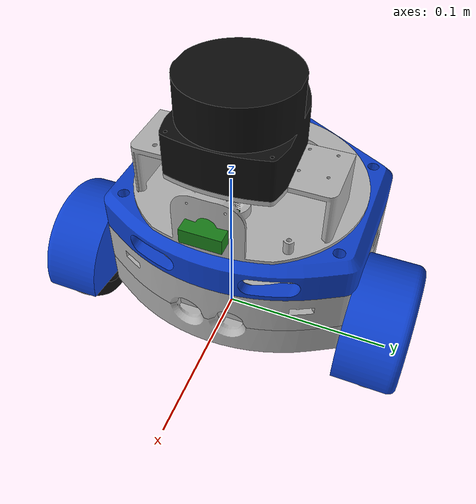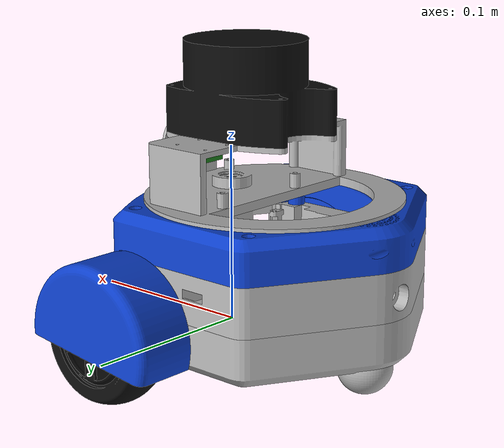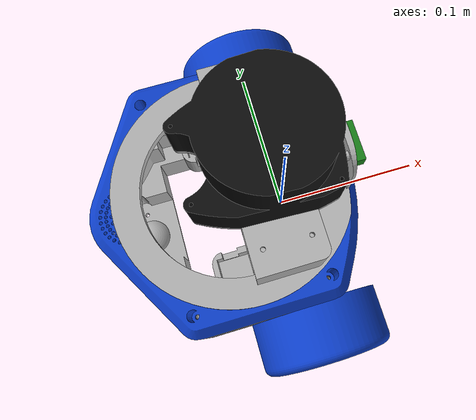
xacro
<?xml version="1.0" ?>
<robot name="fossbot" xmlns:xacro="http://www.ros.org/wiki/xacro">

<xacro:include filename="$(find fossbot_description)/urdf/materials.xacro" />
<!-- gazebo plugins intentionally omitted: on the real robot the hardware
     bridge publishes /scan, /odom and /joint_states instead. -->
<link name="base_link">
  <inertial>
    <origin xyz="-1.3603525122596214e-05 -0.0012199693805202846 0.012227390076718293" rpy="0 0 0"/>
    <mass value="0.7158"/>
    <inertia ixx="0.003805" iyy="0.0035" izz="0.007095" ixy="2e-06" iyz="-8e-06" ixz="-0.0"/>
  </inertial>
  <visual>
    <origin xyz="0 0 0" rpy="0 0 0"/>
    <geometry>
      <mesh filename="file://$(find fossbot_description)/meshes/base_link.stl" scale="0.001 0.001 0.001"/>
    </geometry>
    <material name="silver"/>
  </visual>
  <collision>
    <origin xyz="0 0 0" rpy="0 0 0"/>
    <geometry>
      <mesh filename="file://$(find fossbot_description)/meshes/base_link.stl" scale="0.001 0.001 0.001"/>
    </geometry>
  </collision>
</link>

<link name="base_footprint"/>

<joint name="base_footprint_to_base_link" type="fixed">
  <parent link="base_footprint"/>
  <child link="base_link"/>
  <origin xyz="-0.03176 0 0" rpy="0 0 1.57079632679"/>
</joint>

<link name="middle_1">
  <inertial>
    <origin xyz="0.07199608464446365 -0.03451691283647535 0.01164222932640736" rpy="0 0 0"/>
    <mass value="0.6638"/>
    <inertia ixx="0.002941" iyy="0.004591" izz="0.00734" ixy="-2.2e-05" iyz="-0.0" ixz="-2e-06"/>
  </inertial>
  <visual>
    <origin xyz="0.071929 -0.031054 -0.0265" rpy="0 0 0"/>
    <geometry>
      <mesh filename="file://$(find fossbot_description)/meshes/middle_1.stl" scale="0.001 0.001 0.001"/>
    </geometry>
    <material name="silver"/>
  </visual>
  <collision>
    <origin xyz="0.071929 -0.031054 -0.0265" rpy="0 0 0"/>
    <geometry>
      <mesh filename="file://$(find fossbot_description)/meshes/middle_1.stl" scale="0.001 0.001 0.001"/>
    </geometry>
  </collision>
</link>

<link name="left_fender_1">
  <inertial>
    <origin xyz="0.023489273994684493 -0.003882357713490516 -0.022094333981198547" rpy="0 0 0"/>
    <mass value="0.0612"/>
    <inertia ixx="0.000134" iyy="5.9e-05" izz="0.000126" ixy="-8e-06" iyz="5e-06" ixz="6e-06"/>
  </inertial>
  <visual>
    <origin xyz="-0.073908 0.027002 -0.056306" rpy="0 0 0"/>
    <geometry>
      <mesh filename="file://$(find fossbot_description)/meshes/left_fender_1.stl" scale="0.001 0.001 0.001"/>
    </geometry>
    <material name="blue"/>
  </visual>
  <collision>
    <origin xyz="-0.073908 0.027002 -0.056306" rpy="0 0 0"/>
    <geometry>
      <mesh filename="file://$(find fossbot_description)/meshes/left_fender_1.stl" scale="0.001 0.001 0.001"/>
    </geometry>
  </collision>
</link>

<link name="right_fender_1">
  <inertial>
    <origin xyz="-0.023484092251422506 -0.005382805949463394 -0.022095445009908225" rpy="0 0 0"/>
    <mass value="0.0612"/>
    <inertia ixx="0.000134" iyy="5.9e-05" izz="0.000126" ixy="8e-06" iyz="5e-06" ixz="-6e-06"/>
  </inertial>
  <visual>
    <origin xyz="0.073972 0.025161 -0.056307" rpy="0 0 0"/>
    <geometry>
      <mesh filename="file://$(find fossbot_description)/meshes/right_fender_1.stl" scale="0.001 0.001 0.001"/>
    </geometry>
    <material name="blue"/>
  </visual>
  <collision>
    <origin xyz="0.073972 0.025161 -0.056307" rpy="0 0 0"/>
    <geometry>
      <mesh filename="file://$(find fossbot_description)/meshes/right_fender_1.stl" scale="0.001 0.001 0.001"/>
    </geometry>
  </collision>
</link>

<link name="wheel_v4__1__1">
  <inertial>
    <origin xyz="-0.077848 0.03176 -0.01476" rpy="0 0 0"/>
    <mass value="0.0827"/>
    <inertia ixx="0.0001" iyy="0.0001" izz="0.0001" ixy="0.0" iyz="0.0" ixz="0.0"/>
  </inertial>
  <visual>
    <origin xyz="-0.077848 0.03176 -0.01476" rpy="0 0 0"/>
    <geometry>
      <mesh filename="file://$(find fossbot_description)/meshes/wheel_v4__1__1.stl" scale="0.001 0.001 0.001"/>
    </geometry>
    <material name="black"/>
  </visual>
  <collision>
    <origin xyz="-0.077848 0.03176 -0.01476" rpy="0 0 0"/>
    <geometry>
      <mesh filename="file://$(find fossbot_description)/meshes/wheel_v4__1__1.stl" scale="0.001 0.001 0.001"/>
    </geometry>
  </collision>
</link>

<link name="wheel_v4_1">
  <inertial>
    <origin xyz="0.078037 0.03176 -0.01476" rpy="0 0 0"/>
    <mass value="0.0827"/>
    <inertia ixx="0.0001" iyy="0.0001" izz="0.0001" ixy="0.0" iyz="0.0" ixz="0.0"/>
  </inertial>
  <visual>
    <origin xyz="0.078037 0.03176 -0.01476" rpy="0 0 0"/>
    <geometry>
      <mesh filename="file://$(find fossbot_description)/meshes/wheel_v4_1.stl" scale="0.001 0.001 0.001"/>
    </geometry>
    <material name="black"/>
  </visual>
  <collision>
    <origin xyz="0.078037 0.03176 -0.01476" rpy="0 0 0"/>
    <geometry>
      <mesh filename="file://$(find fossbot_description)/meshes/wheel_v4_1.stl" scale="0.001 0.001 0.001"/>
    </geometry>
  </collision>
</link>

<link name="top_1">
  <inertial>
    <origin xyz="-0.06519066806409202 -0.03177839406940825 0.013173049099162774" rpy="0 0 0"/>
    <mass value="0.3243"/>
    <inertia ixx="0.001871" iyy="0.00249" izz="0.004287" ixy="7e-06" iyz="1.3e-05" ixz="-0.0"/>
  </inertial>
  <visual>
    <origin xyz="-0.065165 -0.039806 -0.053" rpy="0 0 0"/>
    <geometry>
      <mesh filename="file://$(find fossbot_description)/meshes/top_1.stl" scale="0.001 0.001 0.001"/>
    </geometry>
    <material name="blue"/>
  </visual>
  <collision>
    <origin xyz="-0.065165 -0.039806 -0.053" rpy="0 0 0"/>
    <geometry>
      <mesh filename="file://$(find fossbot_description)/meshes/top_1.stl" scale="0.001 0.001 0.001"/>
    </geometry>
  </collision>
</link>

<link name="caster">
  <visual>
    <origin xyz="0 0 0" rpy="0 0 0"/>
    <geometry>
      <mesh filename="file://$(find fossbot_description)/meshes/caster_1_1.stl" scale="0.001 0.001 0.001"/>
    </geometry>
    <material name="silver"/>
  </visual>
  <collision>
    <origin xyz="0.000318 0.062858 0.000922" rpy="0 0 0"/>
    <geometry>
      <sphere radius="0.015"/>
    </geometry>
  </collision>
</link>

<link name="top_mount">
  <visual>
    <origin xyz="0 0 0" rpy="0 0 0"/>
    <geometry>
      <mesh filename="file://$(find fossbot_description)/meshes/top_moount_1_1.stl" scale="0.001 0.001 0.001"/>
    </geometry>
    <material name="silver"/>
  </visual>
  <collision>
    <origin xyz="0 0 0" rpy="0 0 0"/>
    <geometry>
      <mesh filename="file://$(find fossbot_description)/meshes/top_moount_1_1.stl" scale="0.001 0.001 0.001"/>
    </geometry>
  </collision>
</link>

<link name="lidar_base">
  <visual>
    <origin xyz="0 0 0" rpy="0 0 0"/>
    <geometry>
      <mesh filename="file://$(find fossbot_description)/meshes/lidar_base_1_1.stl" scale="0.001 0.001 0.001"/>
    </geometry>
    <material name="silver"/>
  </visual>
  <collision>
    <origin xyz="0 0 0" rpy="0 0 0"/>
    <geometry>
      <mesh filename="file://$(find fossbot_description)/meshes/lidar_base_1_1.stl" scale="0.001 0.001 0.001"/>
    </geometry>
  </collision>
</link>

<link name="lidar">
  <visual>
    <origin xyz="0.000285 0.015746 -0.135" rpy="0 0 0"/>
    <geometry>
      <mesh filename="file://$(find fossbot_description)/meshes/lidar__1__1.stl" scale="0.001 0.001 0.001"/>
    </geometry>
    <material name="black"/>
  </visual>
  <collision>
    <origin xyz="0.000285 0.015746 -0.135" rpy="0 0 0"/>
    <geometry>
      <mesh filename="file://$(find fossbot_description)/meshes/lidar__1__1.stl" scale="0.001 0.001 0.001"/>
    </geometry>
  </collision>
</link>

<link name="camera_link">
  <inertial>
    <origin xyz="0 0 0" rpy="0 0 0"/>
    <mass value="0.0083"/>
    <inertia ixx="1e-05" iyy="1e-05" izz="1e-05" ixy="0.0" iyz="0.0" ixz="0.0"/>
  </inertial>
  <visual>
    <origin xyz="0 0 0" rpy="0 0 0"/>
    <geometry>
      <box size="0.025 0.024 0.009"/>
    </geometry>
    <material name="green"/>
  </visual>
  <collision>
    <origin xyz="0 0 0" rpy="0 0 0"/>
    <geometry>
      <box size="0.025 0.024 0.009"/>
    </geometry>
  </collision>
</link>

<link name="camera_optical_frame"/>
<link name="lidar_scan_frame"/>

<joint name="Rigid 17" type="fixed">
  <origin xyz="-0.071929 0.031054 0.0265" rpy="0 0 0"/>
  <parent link="base_link"/>
  <child link="middle_1"/>
</joint>

<joint name="Rigid 18" type="fixed">
  <origin xyz="0.008743 -0.066808 0.003306" rpy="0 0 0"/>
  <parent link="top_1"/>
  <child link="left_fender_1"/>
</joint>

<joint name="Rigid 19" type="fixed">
  <origin xyz="-0.139137 -0.064967 0.003307" rpy="0 0 0"/>
  <parent link="top_1"/>
  <child link="right_fender_1"/>
</joint>

<joint name="Revolute 20" type="continuous">
  <origin xyz="0.077848 -0.03176 0.01476" rpy="0 0 0"/>
  <parent link="base_link"/>
  <child link="wheel_v4__1__1"/>
  <axis xyz="0.999996 0.00298 -0.0"/>
  <dynamics damping="0.5" friction="0.2"/>
</joint>

<joint name="Revolute 21" type="continuous">
  <origin xyz="-0.078037 -0.03176 0.01476" rpy="0 0 0"/>
  <parent link="base_link"/>
  <child link="wheel_v4_1"/>
  <axis xyz="0.999996 -0.00298 0.0"/>
  <dynamics damping="0.5" friction="0.2"/>
</joint>

<joint name="Rigid 22" type="fixed">
  <origin xyz="0.137094 0.008752 0.0265" rpy="0 0 0"/>
  <parent link="middle_1"/>
  <child link="top_1"/>
</joint>

<joint name="caster_joint" type="fixed">
  <origin xyz="0 0 -0.005" rpy="0 0 0"/>
  <parent link="base_link"/>
  <child link="caster"/>
</joint>

<joint name="top_mount_joint" type="fixed">
  <origin xyz="0 0 0" rpy="0 0 0"/>
  <parent link="base_link"/>
  <child link="top_mount"/>
</joint>

<joint name="lidar_base_joint" type="fixed">
  <origin xyz="0 0 0" rpy="0 0 0"/>
  <parent link="top_mount"/>
  <child link="lidar_base"/>
</joint>

<joint name="lidar_joint" type="fixed">
  <origin xyz="-0.000285 -0.015746 0.135" rpy="0 0 0"/>
  <parent link="lidar_base"/>
  <child link="lidar"/>
</joint>

<joint name="camera_joint" type="fixed">
  <origin xyz="0.0 -0.062 0.092" rpy="0 0 -1.57079632679"/>
  <parent link="top_mount"/>
  <child link="camera_link"/>
</joint>

<joint name="camera_optical_joint" type="fixed">
  <origin xyz="0 0 0" rpy="-1.57079632679 0 -1.57079632679"/>
  <parent link="camera_link"/>
  <child link="camera_optical_frame"/>
</joint>

<joint name="lidar_scan_joint" type="fixed">
  <origin xyz="0 0 0" rpy="0 0 0"/>
  <parent link="lidar"/>
  <child link="lidar_scan_frame"/>
</joint>

</robot>

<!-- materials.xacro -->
<robot name="fossbot_educational_gazebo" xmlns:xacro="http://www.ros.org/wiki/xacro" >

<material name="silver">
  <color rgba="0.700 0.700 0.700 1.000"/>
</material>

<material name="blue">
  <color rgba="0.050 0.250 0.800 1.000"/>
</material>

<material name="black">
  <color rgba="0.050 0.050 0.050 1.000"/>
</material>

<material name="green">
  <color rgba="0.100 0.500 0.100 1.000"/>
</material>

</robot>
